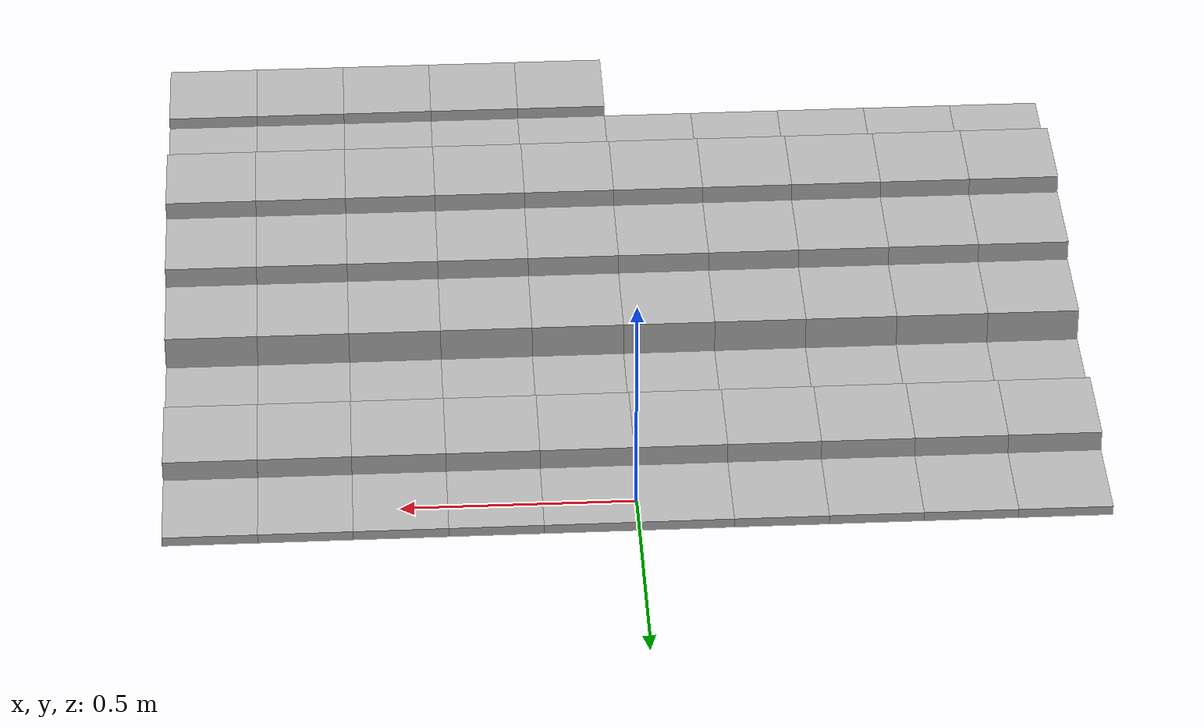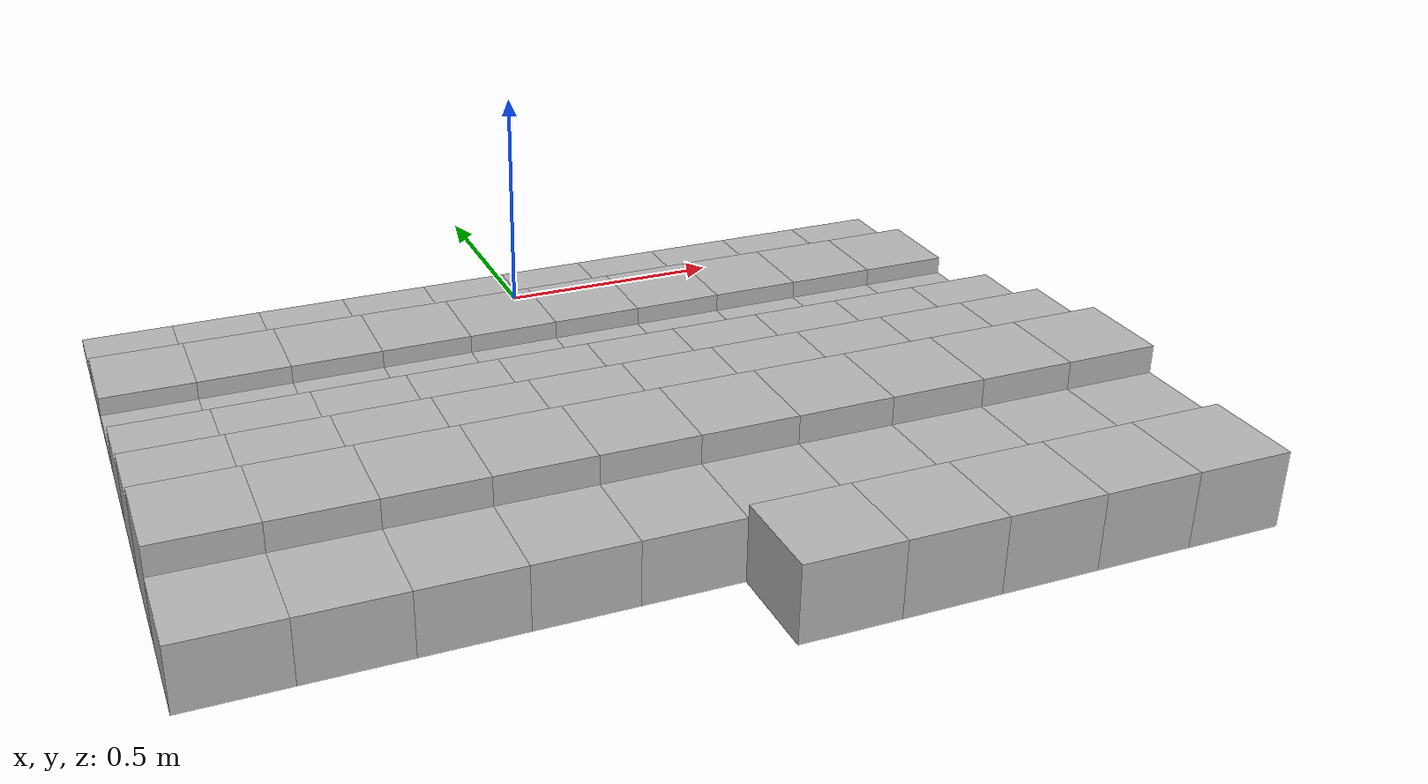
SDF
<sdf version="1.6">
 <model name="Terrain">
  <static>true</static>
  <link name="box_0_0">
   <pose>-0.9 0.0 0.010804927396 0 0 0</pose>
   <inertial>
    <mass>1.0</mass>
    <inertia><ixx>0.0</ixx><ixy>0.0</ixy><ixz>0.0</ixz><iyy>0.0</iyy><iyz>0.0</iyz><izz>0.0</izz></inertia>
   </inertial>
   <collision name="collision"><geometry><box><size>0.2 0.2 0.021609854792</size></box></geometry></collision>
   <visual name="visual"><geometry><box><size>0.2 0.2 0.021609854792</size></box></geometry></visual>
  </link>
  <link name="box_0_1">
   <pose>-0.7 0.0 0.010804927396 0 0 0</pose>
   <inertial>
    <mass>1.0</mass>
    <inertia><ixx>0.0</ixx><ixy>0.0</ixy><ixz>0.0</ixz><iyy>0.0</iyy><iyz>0.0</iyz><izz>0.0</izz></inertia>
   </inertial>
   <collision name="collision"><geometry><box><size>0.2 0.2 0.021609854792</size></box></geometry></collision>
   <visual name="visual"><geometry><box><size>0.2 0.2 0.021609854792</size></box></geometry></visual>
  </link>
  <link name="box_0_2">
   <pose>-0.5 0.0 0.010804927396 0 0 0</pose>
   <inertial>
    <mass>1.0</mass>
    <inertia><ixx>0.0</ixx><ixy>0.0</ixy><ixz>0.0</ixz><iyy>0.0</iyy><iyz>0.0</iyz><izz>0.0</izz></inertia>
   </inertial>
   <collision name="collision"><geometry><box><size>0.2 0.2 0.021609854792</size></box></geometry></collision>
   <visual name="visual"><geometry><box><size>0.2 0.2 0.021609854792</size></box></geometry></visual>
  </link>
  <link name="box_0_3">
   <pose>-0.3 0.0 0.010804927396 0 0 0</pose>
   <inertial>
    <mass>1.0</mass>
    <inertia><ixx>0.0</ixx><ixy>0.0</ixy><ixz>0.0</ixz><iyy>0.0</iyy><iyz>0.0</iyz><izz>0.0</izz></inertia>
   </inertial>
   <collision name="collision"><geometry><box><size>0.2 0.2 0.021609854792</size></box></geometry></collision>
   <visual name="visual"><geometry><box><size>0.2 0.2 0.021609854792</size></box></geometry></visual>
  </link>
  <link name="box_0_4">
   <pose>-0.1 0.0 0.010804927396 0 0 0</pose>
   <inertial>
    <mass>1.0</mass>
    <inertia><ixx>0.0</ixx><ixy>0.0</ixy><ixz>0.0</ixz><iyy>0.0</iyy><iyz>0.0</iyz><izz>0.0</izz></inertia>
   </inertial>
   <collision name="collision"><geometry><box><size>0.2 0.2 0.021609854792</size></box></geometry></collision>
   <visual name="visual"><geometry><box><size>0.2 0.2 0.021609854792</size></box></geometry></visual>
  </link>
  <link name="box_0_5">
   <pose>0.1 0.0 0.010804927396 0 0 0</pose>
   <inertial>
    <mass>1.0</mass>
    <inertia><ixx>0.0</ixx><ixy>0.0</ixy><ixz>0.0</ixz><iyy>0.0</iyy><iyz>0.0</iyz><izz>0.0</izz></inertia>
   </inertial>
   <collision name="collision"><geometry><box><size>0.2 0.2 0.021609854792</size></box></geometry></collision>
   <visual name="visual"><geometry><box><size>0.2 0.2 0.021609854792</size></box></geometry></visual>
  </link>
  <link name="box_0_6">
   <pose>0.3 0.0 0.010804927396 0 0 0</pose>
   <inertial>
    <mass>1.0</mass>
    <inertia><ixx>0.0</ixx><ixy>0.0</ixy><ixz>0.0</ixz><iyy>0.0</iyy><iyz>0.0</iyz><izz>0.0</izz></inertia>
   </inertial>
   <collision name="collision"><geometry><box><size>0.2 0.2 0.021609854792</size></box></geometry></collision>
   <visual name="visual"><geometry><box><size>0.2 0.2 0.021609854792</size></box></geometry></visual>
  </link>
  <link name="box_0_7">
   <pose>0.5 0.0 0.010804927396 0 0 0</pose>
   <inertial>
    <mass>1.0</mass>
    <inertia><ixx>0.0</ixx><ixy>0.0</ixy><ixz>0.0</ixz><iyy>0.0</iyy><iyz>0.0</iyz><izz>0.0</izz></inertia>
   </inertial>
   <collision name="collision"><geometry><box><size>0.2 0.2 0.021609854792</size></box></geometry></collision>
   <visual name="visual"><geometry><box><size>0.2 0.2 0.021609854792</size></box></geometry></visual>
  </link>
  <link name="box_0_8">
   <pose>0.7 0.0 0.010804927396 0 0 0</pose>
   <inertial>
    <mass>1.0</mass>
    <inertia><ixx>0.0</ixx><ixy>0.0</ixy><ixz>0.0</ixz><iyy>0.0</iyy><iyz>0.0</iyz><izz>0.0</izz></inertia>
   </inertial>
   <collision name="collision"><geometry><box><size>0.2 0.2 0.021609854792</size></box></geometry></collision>
   <visual name="visual"><geometry><box><size>0.2 0.2 0.021609854792</size></box></geometry></visual>
  </link>
  <link name="box_0_9">
   <pose>0.9 0.0 0.010804927396 0 0 0</pose>
   <inertial>
    <mass>1.0</mass>
    <inertia><ixx>0.0</ixx><ixy>0.0</ixy><ixz>0.0</ixz><iyy>0.0</iyy><iyz>0.0</iyz><izz>0.0</izz></inertia>
   </inertial>
   <collision name="collision"><geometry><box><size>0.2 0.2 0.021609854792</size></box></geometry></collision>
   <visual name="visual"><geometry><box><size>0.2 0.2 0.021609854792</size></box></geometry></visual>
  </link>
  <link name="box_1_0">
   <pose>-0.9 -0.2 0.0340414026711 0 0 0</pose>
   <inertial>
    <mass>1.0</mass>
    <inertia><ixx>0.0</ixx><ixy>0.0</ixy><ixz>0.0</ixz><iyy>0.0</iyy><iyz>0.0</iyz><izz>0.0</izz></inertia>
   </inertial>
   <collision name="collision"><geometry><box><size>0.2 0.2 0.0680828053423</size></box></geometry></collision>
   <visual name="visual"><geometry><box><size>0.2 0.2 0.0680828053423</size></box></geometry></visual>
  </link>
  <link name="box_1_1">
   <pose>-0.7 -0.2 0.0340414026711 0 0 0</pose>
   <inertial>
    <mass>1.0</mass>
    <inertia><ixx>0.0</ixx><ixy>0.0</ixy><ixz>0.0</ixz><iyy>0.0</iyy><iyz>0.0</iyz><izz>0.0</izz></inertia>
   </inertial>
   <collision name="collision"><geometry><box><size>0.2 0.2 0.0680828053423</size></box></geometry></collision>
   <visual name="visual"><geometry><box><size>0.2 0.2 0.0680828053423</size></box></geometry></visual>
  </link>
  <link name="box_1_2">
   <pose>-0.5 -0.2 0.0340414026711 0 0 0</pose>
   <inertial>
    <mass>1.0</mass>
    <inertia><ixx>0.0</ixx><ixy>0.0</ixy><ixz>0.0</ixz><iyy>0.0</iyy><iyz>0.0</iyz><izz>0.0</izz></inertia>
   </inertial>
   <collision name="collision"><geometry><box><size>0.2 0.2 0.0680828053423</size></box></geometry></collision>
   <visual name="visual"><geometry><box><size>0.2 0.2 0.0680828053423</size></box></geometry></visual>
  </link>
  <link name="box_1_3">
   <pose>-0.3 -0.2 0.0340414026711 0 0 0</pose>
   <inertial>
    <mass>1.0</mass>
    <inertia><ixx>0.0</ixx><ixy>0.0</ixy><ixz>0.0</ixz><iyy>0.0</iyy><iyz>0.0</iyz><izz>0.0</izz></inertia>
   </inertial>
   <collision name="collision"><geometry><box><size>0.2 0.2 0.0680828053423</size></box></geometry></collision>
   <visual name="visual"><geometry><box><size>0.2 0.2 0.0680828053423</size></box></geometry></visual>
  </link>
  <link name="box_1_4">
   <pose>-0.1 -0.2 0.0340414026711 0 0 0</pose>
   <inertial>
    <mass>1.0</mass>
    <inertia><ixx>0.0</ixx><ixy>0.0</ixy><ixz>0.0</ixz><iyy>0.0</iyy><iyz>0.0</iyz><izz>0.0</izz></inertia>
   </inertial>
   <collision name="collision"><geometry><box><size>0.2 0.2 0.0680828053423</size></box></geometry></collision>
   <visual name="visual"><geometry><box><size>0.2 0.2 0.0680828053423</size></box></geometry></visual>
  </link>
  <link name="box_1_5">
   <pose>0.1 -0.2 0.0340414026711 0 0 0</pose>
   <inertial>
    <mass>1.0</mass>
    <inertia><ixx>0.0</ixx><ixy>0.0</ixy><ixz>0.0</ixz><iyy>0.0</iyy><iyz>0.0</iyz><izz>0.0</izz></inertia>
   </inertial>
   <collision name="collision"><geometry><box><size>0.2 0.2 0.0680828053423</size></box></geometry></collision>
   <visual name="visual"><geometry><box><size>0.2 0.2 0.0680828053423</size></box></geometry></visual>
  </link>
  <link name="box_1_6">
   <pose>0.3 -0.2 0.0340414026711 0 0 0</pose>
   <inertial>
    <mass>1.0</mass>
    <inertia><ixx>0.0</ixx><ixy>0.0</ixy><ixz>0.0</ixz><iyy>0.0</iyy><iyz>0.0</iyz><izz>0.0</izz></inertia>
   </inertial>
   <collision name="collision"><geometry><box><size>0.2 0.2 0.0680828053423</size></box></geometry></collision>
   <visual name="visual"><geometry><box><size>0.2 0.2 0.0680828053423</size></box></geometry></visual>
  </link>
  <link name="box_1_7">
   <pose>0.5 -0.2 0.0340414026711 0 0 0</pose>
   <inertial>
    <mass>1.0</mass>
    <inertia><ixx>0.0</ixx><ixy>0.0</ixy><ixz>0.0</ixz><iyy>0.0</iyy><iyz>0.0</iyz><izz>0.0</izz></inertia>
   </inertial>
   <collision name="collision"><geometry><box><size>0.2 0.2 0.0680828053423</size></box></geometry></collision>
   <visual name="visual"><geometry><box><size>0.2 0.2 0.0680828053423</size></box></geometry></visual>
  </link>
  <link name="box_1_8">
   <pose>0.7 -0.2 0.0340414026711 0 0 0</pose>
   <inertial>
    <mass>1.0</mass>
    <inertia><ixx>0.0</ixx><ixy>0.0</ixy><ixz>0.0</ixz><iyy>0.0</iyy><iyz>0.0</iyz><izz>0.0</izz></inertia>
   </inertial>
   <collision name="collision"><geometry><box><size>0.2 0.2 0.0680828053423</size></box></geometry></collision>
   <visual name="visual"><geometry><box><size>0.2 0.2 0.0680828053423</size></box></geometry></visual>
  </link>
  <link name="box_1_9">
   <pose>0.9 -0.2 0.0340414026711 0 0 0</pose>
   <inertial>
    <mass>1.0</mass>
    <inertia><ixx>0.0</ixx><ixy>0.0</ixy><ixz>0.0</ixz><iyy>0.0</iyy><iyz>0.0</iyz><izz>0.0</izz></inertia>
   </inertial>
   <collision name="collision"><geometry><box><size>0.2 0.2 0.0680828053423</size></box></geometry></collision>
   <visual name="visual"><geometry><box><size>0.2 0.2 0.0680828053423</size></box></geometry></visual>
  </link>
  <link name="box_2_0">
   <pose>-0.9 -0.4 0.0142598015036 0 0 0</pose>
   <inertial>
    <mass>1.0</mass>
    <inertia><ixx>0.0</ixx><ixy>0.0</ixy><ixz>0.0</ixz><iyy>0.0</iyy><iyz>0.0</iyz><izz>0.0</izz></inertia>
   </inertial>
   <collision name="collision"><geometry><box><size>0.2 0.2 0.0285196030072</size></box></geometry></collision>
   <visual name="visual"><geometry><box><size>0.2 0.2 0.0285196030072</size></box></geometry></visual>
  </link>
  <link name="box_2_1">
   <pose>-0.7 -0.4 0.0142598015036 0 0 0</pose>
   <inertial>
    <mass>1.0</mass>
    <inertia><ixx>0.0</ixx><ixy>0.0</ixy><ixz>0.0</ixz><iyy>0.0</iyy><iyz>0.0</iyz><izz>0.0</izz></inertia>
   </inertial>
   <collision name="collision"><geometry><box><size>0.2 0.2 0.0285196030072</size></box></geometry></collision>
   <visual name="visual"><geometry><box><size>0.2 0.2 0.0285196030072</size></box></geometry></visual>
  </link>
  <link name="box_2_2">
   <pose>-0.5 -0.4 0.0142598015036 0 0 0</pose>
   <inertial>
    <mass>1.0</mass>
    <inertia><ixx>0.0</ixx><ixy>0.0</ixy><ixz>0.0</ixz><iyy>0.0</iyy><iyz>0.0</iyz><izz>0.0</izz></inertia>
   </inertial>
   <collision name="collision"><geometry><box><size>0.2 0.2 0.0285196030072</size></box></geometry></collision>
   <visual name="visual"><geometry><box><size>0.2 0.2 0.0285196030072</size></box></geometry></visual>
  </link>
  <link name="box_2_3">
   <pose>-0.3 -0.4 0.0142598015036 0 0 0</pose>
   <inertial>
    <mass>1.0</mass>
    <inertia><ixx>0.0</ixx><ixy>0.0</ixy><ixz>0.0</ixz><iyy>0.0</iyy><iyz>0.0</iyz><izz>0.0</izz></inertia>
   </inertial>
   <collision name="collision"><geometry><box><size>0.2 0.2 0.0285196030072</size></box></geometry></collision>
   <visual name="visual"><geometry><box><size>0.2 0.2 0.0285196030072</size></box></geometry></visual>
  </link>
  <link name="box_2_4">
   <pose>-0.1 -0.4 0.0142598015036 0 0 0</pose>
   <inertial>
    <mass>1.0</mass>
    <inertia><ixx>0.0</ixx><ixy>0.0</ixy><ixz>0.0</ixz><iyy>0.0</iyy><iyz>0.0</iyz><izz>0.0</izz></inertia>
   </inertial>
   <collision name="collision"><geometry><box><size>0.2 0.2 0.0285196030072</size></box></geometry></collision>
   <visual name="visual"><geometry><box><size>0.2 0.2 0.0285196030072</size></box></geometry></visual>
  </link>
  <link name="box_2_5">
   <pose>0.1 -0.4 0.0142598015036 0 0 0</pose>
   <inertial>
    <mass>1.0</mass>
    <inertia><ixx>0.0</ixx><ixy>0.0</ixy><ixz>0.0</ixz><iyy>0.0</iyy><iyz>0.0</iyz><izz>0.0</izz></inertia>
   </inertial>
   <collision name="collision"><geometry><box><size>0.2 0.2 0.0285196030072</size></box></geometry></collision>
   <visual name="visual"><geometry><box><size>0.2 0.2 0.0285196030072</size></box></geometry></visual>
  </link>
  <link name="box_2_6">
   <pose>0.3 -0.4 0.0142598015036 0 0 0</pose>
   <inertial>
    <mass>1.0</mass>
    <inertia><ixx>0.0</ixx><ixy>0.0</ixy><ixz>0.0</ixz><iyy>0.0</iyy><iyz>0.0</iyz><izz>0.0</izz></inertia>
   </inertial>
   <collision name="collision"><geometry><box><size>0.2 0.2 0.0285196030072</size></box></geometry></collision>
   <visual name="visual"><geometry><box><size>0.2 0.2 0.0285196030072</size></box></geometry></visual>
  </link>
  <link name="box_2_7">
   <pose>0.5 -0.4 0.0142598015036 0 0 0</pose>
   <inertial>
    <mass>1.0</mass>
    <inertia><ixx>0.0</ixx><ixy>0.0</ixy><ixz>0.0</ixz><iyy>0.0</iyy><iyz>0.0</iyz><izz>0.0</izz></inertia>
   </inertial>
   <collision name="collision"><geometry><box><size>0.2 0.2 0.0285196030072</size></box></geometry></collision>
   <visual name="visual"><geometry><box><size>0.2 0.2 0.0285196030072</size></box></geometry></visual>
  </link>
  <link name="box_2_8">
   <pose>0.7 -0.4 0.0142598015036 0 0 0</pose>
   <inertial>
    <mass>1.0</mass>
    <inertia><ixx>0.0</ixx><ixy>0.0</ixy><ixz>0.0</ixz><iyy>0.0</iyy><iyz>0.0</iyz><izz>0.0</izz></inertia>
   </inertial>
   <collision name="collision"><geometry><box><size>0.2 0.2 0.0285196030072</size></box></geometry></collision>
   <visual name="visual"><geometry><box><size>0.2 0.2 0.0285196030072</size></box></geometry></visual>
  </link>
  <link name="box_2_9">
   <pose>0.9 -0.4 0.0142598015036 0 0 0</pose>
   <inertial>
    <mass>1.0</mass>
    <inertia><ixx>0.0</ixx><ixy>0.0</ixy><ixz>0.0</ixz><iyy>0.0</iyy><iyz>0.0</iyz><izz>0.0</izz></inertia>
   </inertial>
   <collision name="collision"><geometry><box><size>0.2 0.2 0.0285196030072</size></box></geometry></collision>
   <visual name="visual"><geometry><box><size>0.2 0.2 0.0285196030072</size></box></geometry></visual>
  </link>
  <link name="box_3_0">
   <pose>-0.9 -0.6 0.0524541278169 0 0 0</pose>
   <inertial>
    <mass>1.0</mass>
    <inertia><ixx>0.0</ixx><ixy>0.0</ixy><ixz>0.0</ixz><iyy>0.0</iyy><iyz>0.0</iyz><izz>0.0</izz></inertia>
   </inertial>
   <collision name="collision"><geometry><box><size>0.2 0.2 0.104908255634</size></box></geometry></collision>
   <visual name="visual"><geometry><box><size>0.2 0.2 0.104908255634</size></box></geometry></visual>
  </link>
  <link name="box_3_1">
   <pose>-0.7 -0.6 0.0524541278169 0 0 0</pose>
   <inertial>
    <mass>1.0</mass>
    <inertia><ixx>0.0</ixx><ixy>0.0</ixy><ixz>0.0</ixz><iyy>0.0</iyy><iyz>0.0</iyz><izz>0.0</izz></inertia>
   </inertial>
   <collision name="collision"><geometry><box><size>0.2 0.2 0.104908255634</size></box></geometry></collision>
   <visual name="visual"><geometry><box><size>0.2 0.2 0.104908255634</size></box></geometry></visual>
  </link>
  <link name="box_3_2">
   <pose>-0.5 -0.6 0.0524541278169 0 0 0</pose>
   <inertial>
    <mass>1.0</mass>
    <inertia><ixx>0.0</ixx><ixy>0.0</ixy><ixz>0.0</ixz><iyy>0.0</iyy><iyz>0.0</iyz><izz>0.0</izz></inertia>
   </inertial>
   <collision name="collision"><geometry><box><size>0.2 0.2 0.104908255634</size></box></geometry></collision>
   <visual name="visual"><geometry><box><size>0.2 0.2 0.104908255634</size></box></geometry></visual>
  </link>
  <link name="box_3_3">
   <pose>-0.3 -0.6 0.0524541278169 0 0 0</pose>
   <inertial>
    <mass>1.0</mass>
    <inertia><ixx>0.0</ixx><ixy>0.0</ixy><ixz>0.0</ixz><iyy>0.0</iyy><iyz>0.0</iyz><izz>0.0</izz></inertia>
   </inertial>
   <collision name="collision"><geometry><box><size>0.2 0.2 0.104908255634</size></box></geometry></collision>
   <visual name="visual"><geometry><box><size>0.2 0.2 0.104908255634</size></box></geometry></visual>
  </link>
  <link name="box_3_4">
   <pose>-0.1 -0.6 0.0524541278169 0 0 0</pose>
   <inertial>
    <mass>1.0</mass>
    <inertia><ixx>0.0</ixx><ixy>0.0</ixy><ixz>0.0</ixz><iyy>0.0</iyy><iyz>0.0</iyz><izz>0.0</izz></inertia>
   </inertial>
   <collision name="collision"><geometry><box><size>0.2 0.2 0.104908255634</size></box></geometry></collision>
   <visual name="visual"><geometry><box><size>0.2 0.2 0.104908255634</size></box></geometry></visual>
  </link>
  <link name="box_3_5">
   <pose>0.1 -0.6 0.0524541278169 0 0 0</pose>
   <inertial>
    <mass>1.0</mass>
    <inertia><ixx>0.0</ixx><ixy>0.0</ixy><ixz>0.0</ixz><iyy>0.0</iyy><iyz>0.0</iyz><izz>0.0</izz></inertia>
   </inertial>
   <collision name="collision"><geometry><box><size>0.2 0.2 0.104908255634</size></box></geometry></collision>
   <visual name="visual"><geometry><box><size>0.2 0.2 0.104908255634</size></box></geometry></visual>
  </link>
  <link name="box_3_6">
   <pose>0.3 -0.6 0.0524541278169 0 0 0</pose>
   <inertial>
    <mass>1.0</mass>
    <inertia><ixx>0.0</ixx><ixy>0.0</ixy><ixz>0.0</ixz><iyy>0.0</iyy><iyz>0.0</iyz><izz>0.0</izz></inertia>
   </inertial>
   <collision name="collision"><geometry><box><size>0.2 0.2 0.104908255634</size></box></geometry></collision>
   <visual name="visual"><geometry><box><size>0.2 0.2 0.104908255634</size></box></geometry></visual>
  </link>
  <link name="box_3_7">
   <pose>0.5 -0.6 0.0524541278169 0 0 0</pose>
   <inertial>
    <mass>1.0</mass>
    <inertia><ixx>0.0</ixx><ixy>0.0</ixy><ixz>0.0</ixz><iyy>0.0</iyy><iyz>0.0</iyz><izz>0.0</izz></inertia>
   </inertial>
   <collision name="collision"><geometry><box><size>0.2 0.2 0.104908255634</size></box></geometry></collision>
   <visual name="visual"><geometry><box><size>0.2 0.2 0.104908255634</size></box></geometry></visual>
  </link>
  <link name="box_3_8">
   <pose>0.7 -0.6 0.0524541278169 0 0 0</pose>
   <inertial>
    <mass>1.0</mass>
    <inertia><ixx>0.0</ixx><ixy>0.0</ixy><ixz>0.0</ixz><iyy>0.0</iyy><iyz>0.0</iyz><izz>0.0</izz></inertia>
   </inertial>
   <collision name="collision"><geometry><box><size>0.2 0.2 0.104908255634</size></box></geometry></collision>
   <visual name="visual"><geometry><box><size>0.2 0.2 0.104908255634</size></box></geometry></visual>
  </link>
  <link name="box_3_9">
   <pose>0.9 -0.6 0.0524541278169 0 0 0</pose>
   <inertial>
    <mass>1.0</mass>
    <inertia><ixx>0.0</ixx><ixy>0.0</ixy><ixz>0.0</ixz><iyy>0.0</iyy><iyz>0.0</iyz><izz>0.0</izz></inertia>
   </inertial>
   <collision name="collision"><geometry><box><size>0.2 0.2 0.104908255634</size></box></geometry></collision>
   <visual name="visual"><geometry><box><size>0.2 0.2 0.104908255634</size></box></geometry></visual>
  </link>
  <link name="box_4_0">
   <pose>-0.9 -0.8 0.0757557181612 0 0 0</pose>
   <inertial>
    <mass>1.0</mass>
    <inertia><ixx>0.0</ixx><ixy>0.0</ixy><ixz>0.0</ixz><iyy>0.0</iyy><iyz>0.0</iyz><izz>0.0</izz></inertia>
   </inertial>
   <collision name="collision"><geometry><box><size>0.2 0.2 0.151511436322</size></box></geometry></collision>
   <visual name="visual"><geometry><box><size>0.2 0.2 0.151511436322</size></box></geometry></visual>
  </link>
  <link name="box_4_1">
   <pose>-0.7 -0.8 0.0757557181612 0 0 0</pose>
   <inertial>
    <mass>1.0</mass>
    <inertia><ixx>0.0</ixx><ixy>0.0</ixy><ixz>0.0</ixz><iyy>0.0</iyy><iyz>0.0</iyz><izz>0.0</izz></inertia>
   </inertial>
   <collision name="collision"><geometry><box><size>0.2 0.2 0.151511436322</size></box></geometry></collision>
   <visual name="visual"><geometry><box><size>0.2 0.2 0.151511436322</size></box></geometry></visual>
  </link>
  <link name="box_4_2">
   <pose>-0.5 -0.8 0.0757557181612 0 0 0</pose>
   <inertial>
    <mass>1.0</mass>
    <inertia><ixx>0.0</ixx><ixy>0.0</ixy><ixz>0.0</ixz><iyy>0.0</iyy><iyz>0.0</iyz><izz>0.0</izz></inertia>
   </inertial>
   <collision name="collision"><geometry><box><size>0.2 0.2 0.151511436322</size></box></geometry></collision>
   <visual name="visual"><geometry><box><size>0.2 0.2 0.151511436322</size></box></geometry></visual>
  </link>
  <link name="box_4_3">
   <pose>-0.3 -0.8 0.0757557181612 0 0 0</pose>
   <inertial>
    <mass>1.0</mass>
    <inertia><ixx>0.0</ixx><ixy>0.0</ixy><ixz>0.0</ixz><iyy>0.0</iyy><iyz>0.0</iyz><izz>0.0</izz></inertia>
   </inertial>
   <collision name="collision"><geometry><box><size>0.2 0.2 0.151511436322</size></box></geometry></collision>
   <visual name="visual"><geometry><box><size>0.2 0.2 0.151511436322</size></box></geometry></visual>
  </link>
  <link name="box_4_4">
   <pose>-0.1 -0.8 0.0757557181612 0 0 0</pose>
   <inertial>
    <mass>1.0</mass>
    <inertia><ixx>0.0</ixx><ixy>0.0</ixy><ixz>0.0</ixz><iyy>0.0</iyy><iyz>0.0</iyz><izz>0.0</izz></inertia>
   </inertial>
   <collision name="collision"><geometry><box><size>0.2 0.2 0.151511436322</size></box></geometry></collision>
   <visual name="visual"><geometry><box><size>0.2 0.2 0.151511436322</size></box></geometry></visual>
  </link>
  <link name="box_4_5">
   <pose>0.1 -0.8 0.0757557181612 0 0 0</pose>
   <inertial>
    <mass>1.0</mass>
    <inertia><ixx>0.0</ixx><ixy>0.0</ixy><ixz>0.0</ixz><iyy>0.0</iyy><iyz>0.0</iyz><izz>0.0</izz></inertia>
   </inertial>
   <collision name="collision"><geometry><box><size>0.2 0.2 0.151511436322</size></box></geometry></collision>
   <visual name="visual"><geometry><box><size>0.2 0.2 0.151511436322</size></box></geometry></visual>
  </link>
  <link name="box_4_6">
   <pose>0.3 -0.8 0.0757557181612 0 0 0</pose>
   <inertial>
    <mass>1.0</mass>
    <inertia><ixx>0.0</ixx><ixy>0.0</ixy><ixz>0.0</ixz><iyy>0.0</iyy><iyz>0.0</iyz><izz>0.0</izz></inertia>
   </inertial>
   <collision name="collision"><geometry><box><size>0.2 0.2 0.151511436322</size></box></geometry></collision>
   <visual name="visual"><geometry><box><size>0.2 0.2 0.151511436322</size></box></geometry></visual>
  </link>
  <link name="box_4_7">
   <pose>0.5 -0.8 0.0757557181612 0 0 0</pose>
   <inertial>
    <mass>1.0</mass>
    <inertia><ixx>0.0</ixx><ixy>0.0</ixy><ixz>0.0</ixz><iyy>0.0</iyy><iyz>0.0</iyz><izz>0.0</izz></inertia>
   </inertial>
   <collision name="collision"><geometry><box><size>0.2 0.2 0.151511436322</size></box></geometry></collision>
   <visual name="visual"><geometry><box><size>0.2 0.2 0.151511436322</size></box></geometry></visual>
  </link>
  <link name="box_4_8">
   <pose>0.7 -0.8 0.0757557181612 0 0 0</pose>
   <inertial>
    <mass>1.0</mass>
    <inertia><ixx>0.0</ixx><ixy>0.0</ixy><ixz>0.0</ixz><iyy>0.0</iyy><iyz>0.0</iyz><izz>0.0</izz></inertia>
   </inertial>
   <collision name="collision"><geometry><box><size>0.2 0.2 0.151511436322</size></box></geometry></collision>
   <visual name="visual"><geometry><box><size>0.2 0.2 0.151511436322</size></box></geometry></visual>
  </link>
  <link name="box_4_9">
   <pose>0.9 -0.8 0.0757557181612 0 0 0</pose>
   <inertial>
    <mass>1.0</mass>
    <inertia><ixx>0.0</ixx><ixy>0.0</ixy><ixz>0.0</ixz><iyy>0.0</iyy><iyz>0.0</iyz><izz>0.0</izz></inertia>
   </inertial>
   <collision name="collision"><geometry><box><size>0.2 0.2 0.151511436322</size></box></geometry></collision>
   <visual name="visual"><geometry><box><size>0.2 0.2 0.151511436322</size></box></geometry></visual>
  </link>
  <link name="box_5_0">
   <pose>-0.9 -1.0 0.0962679212443 0 0 0</pose>
   <inertial>
    <mass>1.0</mass>
    <inertia><ixx>0.0</ixx><ixy>0.0</ixy><ixz>0.0</ixz><iyy>0.0</iyy><iyz>0.0</iyz><izz>0.0</izz></inertia>
   </inertial>
   <collision name="collision"><geometry><box><size>0.2 0.2 0.192535842489</size></box></geometry></collision>
   <visual name="visual"><geometry><box><size>0.2 0.2 0.192535842489</size></box></geometry></visual>
  </link>
  <link name="box_5_1">
   <pose>-0.7 -1.0 0.0962679212443 0 0 0</pose>
   <inertial>
    <mass>1.0</mass>
    <inertia><ixx>0.0</ixx><ixy>0.0</ixy><ixz>0.0</ixz><iyy>0.0</iyy><iyz>0.0</iyz><izz>0.0</izz></inertia>
   </inertial>
   <collision name="collision"><geometry><box><size>0.2 0.2 0.192535842489</size></box></geometry></collision>
   <visual name="visual"><geometry><box><size>0.2 0.2 0.192535842489</size></box></geometry></visual>
  </link>
  <link name="box_5_2">
   <pose>-0.5 -1.0 0.0962679212443 0 0 0</pose>
   <inertial>
    <mass>1.0</mass>
    <inertia><ixx>0.0</ixx><ixy>0.0</ixy><ixz>0.0</ixz><iyy>0.0</iyy><iyz>0.0</iyz><izz>0.0</izz></inertia>
   </inertial>
   <collision name="collision"><geometry><box><size>0.2 0.2 0.192535842489</size></box></geometry></collision>
   <visual name="visual"><geometry><box><size>0.2 0.2 0.192535842489</size></box></geometry></visual>
  </link>
  <link name="box_5_3">
   <pose>-0.3 -1.0 0.0962679212443 0 0 0</pose>
   <inertial>
    <mass>1.0</mass>
    <inertia><ixx>0.0</ixx><ixy>0.0</ixy><ixz>0.0</ixz><iyy>0.0</iyy><iyz>0.0</iyz><izz>0.0</izz></inertia>
   </inertial>
   <collision name="collision"><geometry><box><size>0.2 0.2 0.192535842489</size></box></geometry></collision>
   <visual name="visual"><geometry><box><size>0.2 0.2 0.192535842489</size></box></geometry></visual>
  </link>
  <link name="box_5_4">
   <pose>-0.1 -1.0 0.0962679212443 0 0 0</pose>
   <inertial>
    <mass>1.0</mass>
    <inertia><ixx>0.0</ixx><ixy>0.0</ixy><ixz>0.0</ixz><iyy>0.0</iyy><iyz>0.0</iyz><izz>0.0</izz></inertia>
   </inertial>
   <collision name="collision"><geometry><box><size>0.2 0.2 0.192535842489</size></box></geometry></collision>
   <visual name="visual"><geometry><box><size>0.2 0.2 0.192535842489</size></box></geometry></visual>
  </link>
  <link name="box_5_5">
   <pose>0.1 -1.0 0.0962679212443 0 0 0</pose>
   <inertial>
    <mass>1.0</mass>
    <inertia><ixx>0.0</ixx><ixy>0.0</ixy><ixz>0.0</ixz><iyy>0.0</iyy><iyz>0.0</iyz><izz>0.0</izz></inertia>
   </inertial>
   <collision name="collision"><geometry><box><size>0.2 0.2 0.192535842489</size></box></geometry></collision>
   <visual name="visual"><geometry><box><size>0.2 0.2 0.192535842489</size></box></geometry></visual>
  </link>
  <link name="box_5_6">
   <pose>0.3 -1.0 0.0962679212443 0 0 0</pose>
   <inertial>
    <mass>1.0</mass>
    <inertia><ixx>0.0</ixx><ixy>0.0</ixy><ixz>0.0</ixz><iyy>0.0</iyy><iyz>0.0</iyz><izz>0.0</izz></inertia>
   </inertial>
   <collision name="collision"><geometry><box><size>0.2 0.2 0.192535842489</size></box></geometry></collision>
   <visual name="visual"><geometry><box><size>0.2 0.2 0.192535842489</size></box></geometry></visual>
  </link>
  <link name="box_5_7">
   <pose>0.5 -1.0 0.0962679212443 0 0 0</pose>
   <inertial>
    <mass>1.0</mass>
    <inertia><ixx>0.0</ixx><ixy>0.0</ixy><ixz>0.0</ixz><iyy>0.0</iyy><iyz>0.0</iyz><izz>0.0</izz></inertia>
   </inertial>
   <collision name="collision"><geometry><box><size>0.2 0.2 0.192535842489</size></box></geometry></collision>
   <visual name="visual"><geometry><box><size>0.2 0.2 0.192535842489</size></box></geometry></visual>
  </link>
  <link name="box_5_8">
   <pose>0.7 -1.0 0.0962679212443 0 0 0</pose>
   <inertial>
    <mass>1.0</mass>
    <inertia><ixx>0.0</ixx><ixy>0.0</ixy><ixz>0.0</ixz><iyy>0.0</iyy><iyz>0.0</iyz><izz>0.0</izz></inertia>
   </inertial>
   <collision name="collision"><geometry><box><size>0.2 0.2 0.192535842489</size></box></geometry></collision>
   <visual name="visual"><geometry><box><size>0.2 0.2 0.192535842489</size></box></geometry></visual>
  </link>
  <link name="box_5_9">
   <pose>0.9 -1.0 0.0962679212443 0 0 0</pose>
   <inertial>
    <mass>1.0</mass>
    <inertia><ixx>0.0</ixx><ixy>0.0</ixy><ixz>0.0</ixz><iyy>0.0</iyy><iyz>0.0</iyz><izz>0.0</izz></inertia>
   </inertial>
   <collision name="collision"><geometry><box><size>0.2 0.2 0.192535842489</size></box></geometry></collision>
   <visual name="visual"><geometry><box><size>0.2 0.2 0.192535842489</size></box></geometry></visual>
  </link>
  <link name="box_6_0">
   <pose>-0.9 -1.2 0.0662163004689 0 0 0</pose>
   <inertial>
    <mass>1.0</mass>
    <inertia><ixx>0.0</ixx><ixy>0.0</ixy><ixz>0.0</ixz><iyy>0.0</iyy><iyz>0.0</iyz><izz>0.0</izz></inertia>
   </inertial>
   <collision name="collision"><geometry><box><size>0.2 0.2 0.132432600938</size></box></geometry></collision>
   <visual name="visual"><geometry><box><size>0.2 0.2 0.132432600938</size></box></geometry></visual>
  </link>
  <link name="box_6_1">
   <pose>-0.7 -1.2 0.0662163004689 0 0 0</pose>
   <inertial>
    <mass>1.0</mass>
    <inertia><ixx>0.0</ixx><ixy>0.0</ixy><ixz>0.0</ixz><iyy>0.0</iyy><iyz>0.0</iyz><izz>0.0</izz></inertia>
   </inertial>
   <collision name="collision"><geometry><box><size>0.2 0.2 0.132432600938</size></box></geometry></collision>
   <visual name="visual"><geometry><box><size>0.2 0.2 0.132432600938</size></box></geometry></visual>
  </link>
  <link name="box_6_2">
   <pose>-0.5 -1.2 0.0662163004689 0 0 0</pose>
   <inertial>
    <mass>1.0</mass>
    <inertia><ixx>0.0</ixx><ixy>0.0</ixy><ixz>0.0</ixz><iyy>0.0</iyy><iyz>0.0</iyz><izz>0.0</izz></inertia>
   </inertial>
   <collision name="collision"><geometry><box><size>0.2 0.2 0.132432600938</size></box></geometry></collision>
   <visual name="visual"><geometry><box><size>0.2 0.2 0.132432600938</size></box></geometry></visual>
  </link>
  <link name="box_6_3">
   <pose>-0.3 -1.2 0.0662163004689 0 0 0</pose>
   <inertial>
    <mass>1.0</mass>
    <inertia><ixx>0.0</ixx><ixy>0.0</ixy><ixz>0.0</ixz><iyy>0.0</iyy><iyz>0.0</iyz><izz>0.0</izz></inertia>
   </inertial>
   <collision name="collision"><geometry><box><size>0.2 0.2 0.132432600938</size></box></geometry></collision>
   <visual name="visual"><geometry><box><size>0.2 0.2 0.132432600938</size></box></geometry></visual>
  </link>
  <link name="box_6_4">
   <pose>-0.1 -1.2 0.0662163004689 0 0 0</pose>
   <inertial>
    <mass>1.0</mass>
    <inertia><ixx>0.0</ixx><ixy>0.0</ixy><ixz>0.0</ixz><iyy>0.0</iyy><iyz>0.0</iyz><izz>0.0</izz></inertia>
   </inertial>
   <collision name="collision"><geometry><box><size>0.2 0.2 0.132432600938</size></box></geometry></collision>
   <visual name="visual"><geometry><box><size>0.2 0.2 0.132432600938</size></box></geometry></visual>
  </link>
  <link name="box_6_5">
   <pose>0.1 -1.2 0.0662163004689 0 0 0</pose>
   <inertial>
    <mass>1.0</mass>
    <inertia><ixx>0.0</ixx><ixy>0.0</ixy><ixz>0.0</ixz><iyy>0.0</iyy><iyz>0.0</iyz><izz>0.0</izz></inertia>
   </inertial>
   <collision name="collision"><geometry><box><size>0.2 0.2 0.132432600938</size></box></geometry></collision>
   <visual name="visual"><geometry><box><size>0.2 0.2 0.132432600938</size></box></geometry></visual>
  </link>
  <link name="box_6_6">
   <pose>0.3 -1.2 0.0662163004689 0 0 0</pose>
   <inertial>
    <mass>1.0</mass>
    <inertia><ixx>0.0</ixx><ixy>0.0</ixy><ixz>0.0</ixz><iyy>0.0</iyy><iyz>0.0</iyz><izz>0.0</izz></inertia>
   </inertial>
   <collision name="collision"><geometry><box><size>0.2 0.2 0.132432600938</size></box></geometry></collision>
   <visual name="visual"><geometry><box><size>0.2 0.2 0.132432600938</size></box></geometry></visual>
  </link>
  <link name="box_6_7">
   <pose>0.5 -1.2 0.0662163004689 0 0 0</pose>
   <inertial>
    <mass>1.0</mass>
    <inertia><ixx>0.0</ixx><ixy>0.0</ixy><ixz>0.0</ixz><iyy>0.0</iyy><iyz>0.0</iyz><izz>0.0</izz></inertia>
   </inertial>
   <collision name="collision"><geometry><box><size>0.2 0.2 0.132432600938</size></box></geometry></collision>
   <visual name="visual"><geometry><box><size>0.2 0.2 0.132432600938</size></box></geometry></visual>
  </link>
  <link name="box_6_8">
   <pose>0.7 -1.2 0.0662163004689 0 0 0</pose>
   <inertial>
    <mass>1.0</mass>
    <inertia><ixx>0.0</ixx><ixy>0.0</ixy><ixz>0.0</ixz><iyy>0.0</iyy><iyz>0.0</iyz><izz>0.0</izz></inertia>
   </inertial>
   <collision name="collision"><geometry><box><size>0.2 0.2 0.132432600938</size></box></geometry></collision>
   <visual name="visual"><geometry><box><size>0.2 0.2 0.132432600938</size></box></geometry></visual>
  </link>
  <link name="box_6_9">
   <pose>0.9 -1.2 0.0662163004689 0 0 0</pose>
   <inertial>
    <mass>1.0</mass>
    <inertia><ixx>0.0</ixx><ixy>0.0</ixy><ixz>0.0</ixz><iyy>0.0</iyy><iyz>0.0</iyz><izz>0.0</izz></inertia>
   </inertial>
   <collision name="collision"><geometry><box><size>0.2 0.2 0.132432600938</size></box></geometry></collision>
   <visual name="visual"><geometry><box><size>0.2 0.2 0.132432600938</size></box></geometry></visual>
  </link>
  <link name="box_7_5">
   <pose>0.1 -1.4 0.079554225096 0 0 0</pose>
   <inertial>
    <mass>1.0</mass>
    <inertia><ixx>0.0</ixx><ixy>0.0</ixy><ixz>0.0</ixz><iyy>0.0</iyy><iyz>0.0</iyz><izz>0.0</izz></inertia>
   </inertial>
   <collision name="collision"><geometry><box><size>0.2 0.2 0.159108450192</size></box></geometry></collision>
   <visual name="visual"><geometry><box><size>0.2 0.2 0.159108450192</size></box></geometry></visual>
  </link>
  <link name="box_7_6">
   <pose>0.3 -1.4 0.079554225096 0 0 0</pose>
   <inertial>
    <mass>1.0</mass>
    <inertia><ixx>0.0</ixx><ixy>0.0</ixy><ixz>0.0</ixz><iyy>0.0</iyy><iyz>0.0</iyz><izz>0.0</izz></inertia>
   </inertial>
   <collision name="collision"><geometry><box><size>0.2 0.2 0.159108450192</size></box></geometry></collision>
   <visual name="visual"><geometry><box><size>0.2 0.2 0.159108450192</size></box></geometry></visual>
  </link>
  <link name="box_7_7">
   <pose>0.5 -1.4 0.079554225096 0 0 0</pose>
   <inertial>
    <mass>1.0</mass>
    <inertia><ixx>0.0</ixx><ixy>0.0</ixy><ixz>0.0</ixz><iyy>0.0</iyy><iyz>0.0</iyz><izz>0.0</izz></inertia>
   </inertial>
   <collision name="collision"><geometry><box><size>0.2 0.2 0.159108450192</size></box></geometry></collision>
   <visual name="visual"><geometry><box><size>0.2 0.2 0.159108450192</size></box></geometry></visual>
  </link>
  <link name="box_7_8">
   <pose>0.7 -1.4 0.079554225096 0 0 0</pose>
   <inertial>
    <mass>1.0</mass>
    <inertia><ixx>0.0</ixx><ixy>0.0</ixy><ixz>0.0</ixz><iyy>0.0</iyy><iyz>0.0</iyz><izz>0.0</izz></inertia>
   </inertial>
   <collision name="collision"><geometry><box><size>0.2 0.2 0.159108450192</size></box></geometry></collision>
   <visual name="visual"><geometry><box><size>0.2 0.2 0.159108450192</size></box></geometry></visual>
  </link>
  <link name="box_7_9">
   <pose>0.9 -1.4 0.079554225096 0 0 0</pose>
   <inertial>
    <mass>1.0</mass>
    <inertia><ixx>0.0</ixx><ixy>0.0</ixy><ixz>0.0</ixz><iyy>0.0</iyy><iyz>0.0</iyz><izz>0.0</izz></inertia>
   </inertial>
   <collision name="collision"><geometry><box><size>0.2 0.2 0.159108450192</size></box></geometry></collision>
   <visual name="visual"><geometry><box><size>0.2 0.2 0.159108450192</size></box></geometry></visual>
  </link>
 </model>
</sdf>
